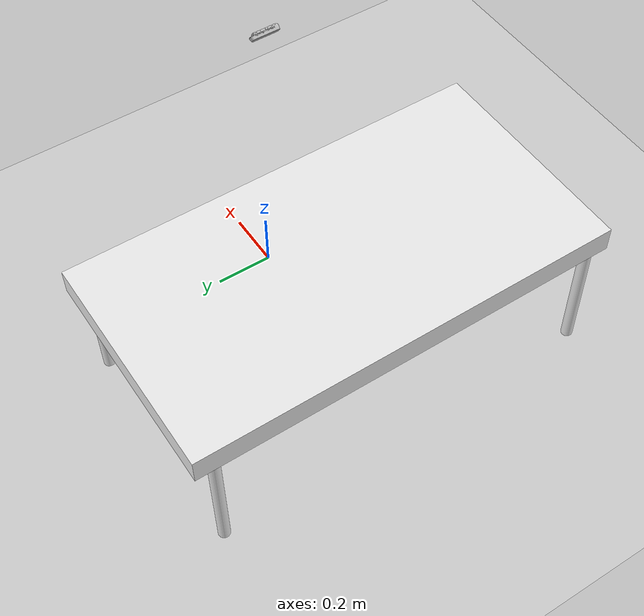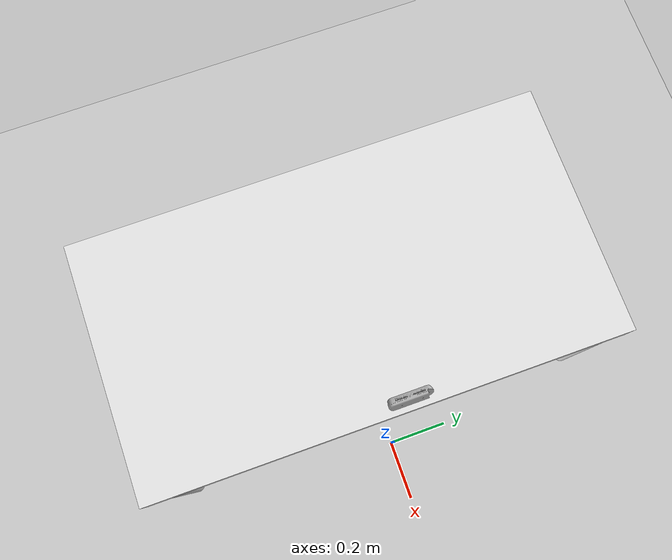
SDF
<sdf version="1.7">
 <world name="default">
  <include><uri>model://sun</uri></include>
  <scene><shadows>false</shadows></scene>
  <light name="user_point_light_0" type="point">
   <pose>0.197302 -0.215077 1 0 -0 0</pose>
   <diffuse>0.5 0.5 0.5 1</diffuse>
   <specular>0.1 0.1 0.1 1</specular>
   <attenuation>
    <range>20</range>
    <constant>0.5</constant>
    <linear>0.01</linear>
    <quadratic>0.001</quadratic>
   </attenuation>
   <cast_shadows>0</cast_shadows>
   <direction>0 0 -1</direction>
  </light>
  <include><uri>model://ground_plane</uri></include>
  <include><uri>model://table_higher</uri><pose>-0.466250 0 0 0 0 -1.57</pose></include>
  <model name="realsense">
   <include>
    <uri>model://realsense_camera_D415</uri>
    <plugin name="pose_mover" filename="libdesign-holder-realsense-world.so"/>
   </include>
   <pose>-0.084112 0.0 1.092464 2.09492 0 -1.57</pose>
   <joint name="realsense_joint" type="fixed">
    <child>icub_head_realsense_holder::head</child>
    <parent>realsense_camera_D415::link</parent>
   </joint>
  </model>
 </world>
</sdf>

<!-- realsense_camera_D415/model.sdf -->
<sdf version="1.6">
  <model name="realsense_camera_D415">
    <pose frame="">0 0 0 0 0 0</pose>
    <link name="link">
        <inertial>
        <mass>0.0615752</mass>
        <inertia>
          <ixx>9.108e-05</ixx>
          <ixy>0</ixy>
          <ixz>0</ixz>
          <iyy>2.51e-06</iyy>
          <iyz>0</iyz>
          <izz>8.931e-05</izz>
        </inertia>
        <pose frame=''>0 0 0 0 -0 0</pose>
      </inertial>
      <self_collide>0</self_collide>
      <enable_wind>0</enable_wind>
      <kinematic>0</kinematic>
      <gravity>0</gravity>
      <visual name="visual">
        <geometry>
          <mesh>
            <uri>model://realsense_camera_D415/meshes/intel_realsense_d415.stl</uri>
            <scale>0.001 0.001 0.001</scale>
          </mesh>
        </geometry>
      </visual>
      <collision name='collision'>
        <laser_retro>0</laser_retro>
        <max_contacts>10</max_contacts>
        <pose frame=''>0 0 0 0 -0 0</pose>
        <geometry>
          <box>
            <size>0.130 0.0078 0.0192</size>
          </box>
        </geometry>
        <surface>
          <friction>
            <ode>
              <mu>1</mu>
              <mu2>1</mu2>
              <fdir1>0 0 0</fdir1>
              <slip1>0</slip1>
              <slip2>0</slip2>
            </ode>
            <torsional>
              <coefficient>1</coefficient>
              <patch_radius>0</patch_radius>
              <surface_radius>0</surface_radius>
              <use_patch_radius>1</use_patch_radius>
              <ode>
                <slip>0</slip>
              </ode>
            </torsional>
          </friction>
          <bounce>
            <restitution_coefficient>0</restitution_coefficient>
            <threshold>1e+06</threshold>
          </bounce>
          <contact>
            <collide_without_contact>1</collide_without_contact>
            <collide_without_contact_bitmask>1</collide_without_contact_bitmask>
            <collide_bitmask>1</collide_bitmask>
            <ode>
              <soft_cfm>0</soft_cfm>
              <soft_erp>0.2</soft_erp>
              <kp>1e+13</kp>
              <kd>1</kd>
              <max_vel>0.01</max_vel>
              <min_depth>0</min_depth>
            </ode>
            <bullet>
              <split_impulse>1</split_impulse>
              <split_impulse_penetration_threshold>-0.01</split_impulse_penetration_threshold>
              <soft_cfm>0</soft_cfm>
              <soft_erp>0.2</soft_erp>
              <kp>1e+13</kp>
              <kd>1</kd>
            </bullet>
          </contact>
        </surface>
      </collision>
      <sensor name="color" type="camera">
        <pose frame="">0.035 0.0 0.0 0.0 -1.57 -1.57</pose>
        <camera name="__default__">
          <horizontal_fov>0.8726646259971648</horizontal_fov>
          <image>
            <width>320</width>
            <height>240</height>
            <format>RGB_INT8</format>
          </image>
          <clip>
            <near>0.1</near>
            <far>100</far>
          </clip>
          <noise>
            <type>gaussian</type>
            <mean>0.0</mean>
            <stddev>0.007</stddev>
          </noise>
        </camera>
        <always_on>1</always_on>
        <update_rate>30</update_rate>
        <visualize>1</visualize>
      </sensor>
      <sensor name="depth" type="depth">
        <pose frame="">0.035 0.0 0.0 0.0 -1.57 -1.57</pose>
        <camera name="__default__">
          <horizontal_fov>0.8726646259971648</horizontal_fov>
          <image>
            <width>320</width>
            <height>240</height>
          </image>
          <clip>
            <near>0.1</near>
            <far>100</far>
          </clip>
          <noise>
            <type>gaussian</type>
            <mean>0.0</mean>
            <stddev>0.007</stddev>
          </noise>
        </camera>
        <always_on>1</always_on>
        <update_rate>30</update_rate>
        <visualize>0</visualize>
        <plugin name='depth_camera_plugin' filename='libgazebo_yarp_depthCamera.so'>
          <yarpConfigurationFile>model://realsense_camera_D415/conf/gazebo_icub_realsense.ini</yarpConfigurationFile>
        </plugin>
      </sensor>
    </link>
  </model>
</sdf>

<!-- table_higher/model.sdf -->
<sdf version="1.7">
  <model name="table_higher">
    <static>true</static>
    <link name="table_root_link">
      <collision name="table_surface_collision">
	<pose>0 0 0.465 0 0 0</pose>
	<geometry>
          <box>
            <size>1.5 0.8 0.09</size>
          </box>
	</geometry>
	<surface>
          <friction>
            <ode>
              <mu>0.1</mu>
              <mu2>0.1</mu2>
            </ode>
          </friction>
	</surface>
      </collision>
      <visual name="table_surface_visual">
	<pose>0 0 0.465 0 0 0</pose>
	<geometry>
          <box>
            <size>1.5 0.8 0.09</size>
          </box>
	</geometry>
	<material>
          <script>
            <uri>file://media/materials/scripts/gazebo.material</uri>
            <name>Gazebo/White</name>
          </script>
	</material>
      </visual>
      <collision name="front_left_leg">
        <pose>0.68 0.38 0.225 0 0 0</pose>
        <geometry>
          <cylinder>
            <radius>0.02</radius>
            <length>0.45</length>
          </cylinder>
        </geometry>
      </collision>
      <visual name="front_left_leg">
        <pose>0.68 0.38 0.225 0 0 0</pose>
        <geometry>
          <cylinder>
            <radius>0.02</radius>
            <length>0.45</length>
          </cylinder>
        </geometry>
        <material>
          <script>
            <uri>file://media/materials/scripts/gazebo.material</uri>
            <name>Gazebo/White</name>
          </script>
        </material>
      </visual>
      <collision name="front_right_leg">
        <pose>0.68 -0.38 0.225 0 0 0</pose>
        <geometry>
          <cylinder>
            <radius>0.02</radius>
            <length>0.45</length>
          </cylinder>
        </geometry>
      </collision>
      <visual name="front_right_leg">
        <pose>0.68 -0.38 0.225 0 0 0</pose>
        <geometry>
          <cylinder>
            <radius>0.02</radius>
            <length>0.45</length>
          </cylinder>
        </geometry>
        <material>
          <script>
            <uri>file://media/materials/scripts/gazebo.material</uri>
            <name>Gazebo/White</name>
          </script>
        </material>
      </visual>
      <collision name="back_right_leg">
        <pose>-0.68 -0.38 0.225 0 0 0</pose>
        <geometry>
          <cylinder>
            <radius>0.02</radius>
            <length>0.45</length>
          </cylinder>
        </geometry>
      </collision>
      <visual name="back_right_leg">
        <pose>-0.68 -0.38 0.225 0 0 0</pose>
        <geometry>
          <cylinder>
            <radius>0.02</radius>
            <length>0.45</length>
          </cylinder>
        </geometry>
        <material>
          <script>
            <uri>file://media/materials/scripts/gazebo.material</uri>
            <name>Gazebo/White</name>
          </script>
        </material>
      </visual>
      <collision name="back_left_leg">
        <pose>-0.68 0.38 0.225 0 0 0</pose>
        <geometry>
          <cylinder>
            <radius>0.02</radius>
            <length>0.45</length>
          </cylinder>
        </geometry>
      </collision>
      <visual name="back_left_leg">
        <pose>-0.68 0.38 0.225 0 0 0</pose>
        <geometry>
          <cylinder>
            <radius>0.02</radius>
            <length>0.45</length>
          </cylinder>
        </geometry>
        <material>
          <script>
            <uri>file://media/materials/scripts/gazebo.material</uri>
            <name>Gazebo/White</name>
          </script>
        </material>
      </visual>
    </link>
  </model>
</sdf>
